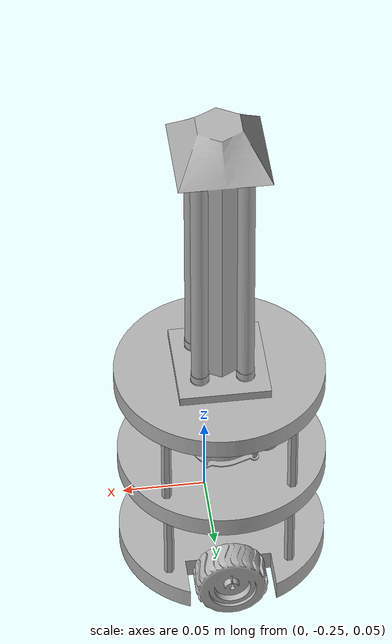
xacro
<?xml version="1.0" ?>
<robot name="robot_main" xmlns:xacro="http://www.ros.org/wiki/xacro">

<xacro:include filename="$(find robot_main_description)/urdf/materials.xacro" />
<xacro:include filename="$(find robot_main_description)/urdf/robot_main.trans" />
<xacro:include filename="$(find robot_main_description)/urdf/robot_main.gazebo" />
<link name="base_link">
  <inertial>
    <origin rpy="0 0 0" xyz="3.116104011509105e-17 -0.16999999999999996 0.09500000000057866"/>
    <mass value="0.8011413661172242"/>
    <inertia ixx="0.000435" ixy="-0.0" ixz="0.0" iyy="0.000916" iyz="0.0" izz="0.001331"/>
  </inertial>
  <visual>
    <origin rpy="0 0 0" xyz="0 0 0"/>
    <geometry>
      <mesh filename="package://robot_main_description/meshes/base_link.stl" scale="0.001 0.001 0.001"/>
    </geometry>
    <material name="silver"/>
  </visual>
  <collision>
    <origin rpy="0 0 0" xyz="0 0 0"/>
    <geometry>
      <mesh filename="package://robot_main_description/meshes/base_link.stl" scale="0.001 0.001 0.001"/>
    </geometry>
  </collision>
</link>

<link name="b_pill_3_1">
  <inertial>
    <origin rpy="0 0 0" xyz="0.009999999999999988 0.006000219713410665 -0.04999999999999999"/>
    <mass value="0.0084978742746349"/>
    <inertia ixx="2e-06" ixy="-0.0" ixz="0.0" iyy="2e-06" iyz="0.0" izz="0.0"/>
  </inertial>
  <visual>
    <origin rpy="0 0 0" xyz="-0.025 0.212272 -0.176"/>
    <geometry>
      <mesh filename="package://robot_main_description/meshes/b_pill_3_1.stl" scale="0.001 0.001 0.001"/>
    </geometry>
    <material name="silver"/>
  </visual>
  <collision>
    <origin rpy="0 0 0" xyz="-0.025 0.212272 -0.176"/>
    <geometry>
      <mesh filename="package://robot_main_description/meshes/b_pill_3_1.stl" scale="0.001 0.001 0.001"/>
    </geometry>
  </collision>
</link>

<link name="b_pill_1_1">
  <inertial>
    <origin rpy="0 0 0" xyz="0.010000000000000009 -0.007000219713410666 -0.04999999999999999"/>
    <mass value="0.008497874274634809"/>
    <inertia ixx="2e-06" ixy="0.0" ixz="0.0" iyy="2e-06" iyz="0.0" izz="0.0"/>
  </inertial>
  <visual>
    <origin rpy="0 0 0" xyz="-0.025 0.127728 -0.176"/>
    <geometry>
      <mesh filename="package://robot_main_description/meshes/b_pill_1_1.stl" scale="0.001 0.001 0.001"/>
    </geometry>
    <material name="silver"/>
  </visual>
  <collision>
    <origin rpy="0 0 0" xyz="-0.025 0.127728 -0.176"/>
    <geometry>
      <mesh filename="package://robot_main_description/meshes/b_pill_1_1.stl" scale="0.001 0.001 0.001"/>
    </geometry>
  </collision>
</link>

<link name="b_pill_2_1">
  <inertial>
    <origin rpy="0 0 0" xyz="-0.00999999999999996 -0.020000439426821393 -0.04999999999999999"/>
    <mass value="0.008497874274634876"/>
    <inertia ixx="2e-06" ixy="-0.0" ixz="-0.0" iyy="2e-06" iyz="0.0" izz="0.0"/>
  </inertial>
  <visual>
    <origin rpy="0 0 0" xyz="0.025 0.115456 -0.176"/>
    <geometry>
      <mesh filename="package://robot_main_description/meshes/b_pill_2_1.stl" scale="0.001 0.001 0.001"/>
    </geometry>
    <material name="silver"/>
  </visual>
  <collision>
    <origin rpy="0 0 0" xyz="0.025 0.115456 -0.176"/>
    <geometry>
      <mesh filename="package://robot_main_description/meshes/b_pill_2_1.stl" scale="0.001 0.001 0.001"/>
    </geometry>
  </collision>
</link>

<link name="b_pill_4_1">
  <inertial>
    <origin rpy="0 0 0" xyz="-0.009999999999999995 0.017000439426821418 -0.04999999999999999"/>
    <mass value="0.0084978742746348"/>
    <inertia ixx="2e-06" ixy="-0.0" ixz="0.0" iyy="2e-06" iyz="0.0" izz="0.0"/>
  </inertial>
  <visual>
    <origin rpy="0 0 0" xyz="0.025 0.224544 -0.176"/>
    <geometry>
      <mesh filename="package://robot_main_description/meshes/b_pill_4_1.stl" scale="0.001 0.001 0.001"/>
    </geometry>
    <material name="silver"/>
  </visual>
  <collision>
    <origin rpy="0 0 0" xyz="0.025 0.224544 -0.176"/>
    <geometry>
      <mesh filename="package://robot_main_description/meshes/b_pill_4_1.stl" scale="0.001 0.001 0.001"/>
    </geometry>
  </collision>
</link>

<link name="wheel1_1">
  <inertial>
    <origin rpy="0 0 0" xyz="1.3424174230260025e-09 0.0036337394694928304 -0.07500614159915955"/>
    <mass value="0.135584559283875"/>
    <inertia ixx="2.1e-05" ixy="0.0" ixz="0.0" iyy="3.5e-05" iyz="-0.0" izz="2.1e-05"/>
  </inertial>
  <visual>
    <origin rpy="0 0 0" xyz="-0.0 0.215 -0.17"/>
    <geometry>
      <mesh filename="package://robot_main_description/meshes/wheel1_1.stl" scale="0.001 0.001 0.001"/>
    </geometry>
    <material name="silver"/>
  </visual>
  <collision>
    <origin rpy="0 0 0" xyz="-0.0 0.215 -0.17"/>
    <geometry>
      <mesh filename="package://robot_main_description/meshes/wheel1_1.stl" scale="0.001 0.001 0.001"/>
    </geometry>
  </collision>
</link>

<link name="wheel2_1">
  <inertial>
    <origin rpy="0 0 0" xyz="-4.338940486903198e-09 -0.0036337590904149675 -0.07500614050851431"/>
    <mass value="0.13558455928387872"/>
    <inertia ixx="2.1e-05" ixy="0.0" ixz="-0.0" iyy="3.5e-05" iyz="0.0" izz="2.1e-05"/>
  </inertial>
  <visual>
    <origin rpy="0 0 0" xyz="-0.0 0.125 -0.17"/>
    <geometry>
      <mesh filename="package://robot_main_description/meshes/wheel2_1.stl" scale="0.001 0.001 0.001"/>
    </geometry>
    <material name="silver"/>
  </visual>
  <collision>
    <origin rpy="0 0 0" xyz="-0.0 0.125 -0.17"/>
    <geometry>
      <mesh filename="package://robot_main_description/meshes/wheel2_1.stl" scale="0.001 0.001 0.001"/>
    </geometry>
  </collision>
</link>

<link name="disc_middle_1">
  <inertial>
    <origin rpy="0 0 0" xyz="0.035000000000000024 0.03954343942682145 -0.06899999999999995"/>
    <mass value="1.0653769006853706"/>
    <inertia ixx="0.000972" ixy="-0.0" ixz="0.0" iyy="0.000972" iyz="0.0" izz="0.001918"/>
  </inertial>
  <visual>
    <origin rpy="0 0 0" xyz="0.035 0.210087 -0.226"/>
    <geometry>
      <mesh filename="package://robot_main_description/meshes/disc_middle_1.stl" scale="0.001 0.001 0.001"/>
    </geometry>
    <material name="silver"/>
  </visual>
  <collision>
    <origin rpy="0 0 0" xyz="0.035 0.210087 -0.226"/>
    <geometry>
      <mesh filename="package://robot_main_description/meshes/disc_middle_1.stl" scale="0.001 0.001 0.001"/>
    </geometry>
  </collision>
</link>

<link name="LIDAR_1">
  <inertial>
    <origin rpy="0 0 0" xyz="-0.004147049785164399 4.394268210416996e-07 0.01010057111139584"/>
    <mass value="0.14394520677893105"/>
    <inertia ixx="1.5e-05" ixy="0.0" ixz="-5e-06" iyy="2.7e-05" iyz="0.0" izz="3.1e-05"/>
  </inertial>
  <visual>
    <origin rpy="0 0 0" xyz="-0.0 0.170544 -0.163"/>
    <geometry>
      <mesh filename="package://robot_main_description/meshes/LIDAR_1.stl" scale="0.001 0.001 0.001"/>
    </geometry>
    <material name="silver"/>
  </visual>
  <collision>
    <origin rpy="0 0 0" xyz="-0.0 0.170544 -0.163"/>
    <geometry>
      <mesh filename="package://robot_main_description/meshes/LIDAR_1.stl" scale="0.001 0.001 0.001"/>
    </geometry>
  </collision>
</link>

<link name="top_struct_1">
  <inertial>
    <origin rpy="0 0 0" xyz="0.00018784276623250314 -6.70226255009565e-05 0.10535186097087959"/>
    <mass value="0.5827013739765129"/>
    <inertia ixx="0.00274" ixy="0.0" ixz="-1e-06" iyy="0.00273" iyz="0.0" izz="0.000164"/>
  </inertial>
  <visual>
    <origin rpy="0 0 0" xyz="-0.001 0.171544 -0.225"/>
    <geometry>
      <mesh filename="package://robot_main_description/meshes/top_struct_1.stl" scale="0.001 0.001 0.001"/>
    </geometry>
    <material name="silver"/>
  </visual>
  <collision>
    <origin rpy="0 0 0" xyz="-0.001 0.171544 -0.225"/>
    <geometry>
      <mesh filename="package://robot_main_description/meshes/top_struct_1.stl" scale="0.001 0.001 0.001"/>
    </geometry>
  </collision>
</link>

<link name="lamp1_1">
  <inertial>
    <origin rpy="0 0 0" xyz="-1.0062974498820099e-08 -4.2765458235782816e-07 0.07874999999999571"/>
    <mass value="0.09355129470031455"/>
    <inertia ixx="0.000198" ixy="-0.0" ixz="-0.0" iyy="0.000198" iyz="0.0" izz="1e-06"/>
  </inertial>
  <visual>
    <origin rpy="0 0 0" xyz="-0.013958 0.185664 -0.23025"/>
    <geometry>
      <mesh filename="package://robot_main_description/meshes/lamp1_1.stl" scale="0.001 0.001 0.001"/>
    </geometry>
    <material name="silver"/>
  </visual>
  <collision>
    <origin rpy="0 0 0" xyz="-0.013958 0.185664 -0.23025"/>
    <geometry>
      <mesh filename="package://robot_main_description/meshes/lamp1_1.stl" scale="0.001 0.001 0.001"/>
    </geometry>
  </collision>
</link>

<link name="lamp2_1">
  <inertial>
    <origin rpy="0 0 0" xyz="-1.0062978336028428e-08 3.0650822915867515e-07 0.07874999999999915"/>
    <mass value="0.09355129470031434"/>
    <inertia ixx="0.000198" ixy="-0.0" ixz="-0.0" iyy="0.000198" iyz="-0.0" izz="1e-06"/>
  </inertial>
  <visual>
    <origin rpy="0 0 0" xyz="-0.013958 0.157423 -0.23025"/>
    <geometry>
      <mesh filename="package://robot_main_description/meshes/lamp2_1.stl" scale="0.001 0.001 0.001"/>
    </geometry>
    <material name="silver"/>
  </visual>
  <collision>
    <origin rpy="0 0 0" xyz="-0.013958 0.157423 -0.23025"/>
    <geometry>
      <mesh filename="package://robot_main_description/meshes/lamp2_1.stl" scale="0.001 0.001 0.001"/>
    </geometry>
  </collision>
</link>

<link name="lamp4_1">
  <inertial>
    <origin rpy="0 0 0" xyz="1.0063024212525473e-08 3.0650824270339605e-07 0.07874999999999943"/>
    <mass value="0.09355129470031395"/>
    <inertia ixx="0.000198" ixy="-0.0" ixz="-0.0" iyy="0.000198" iyz="-0.0" izz="1e-06"/>
  </inertial>
  <visual>
    <origin rpy="0 0 0" xyz="0.011958 0.157423 -0.23025"/>
    <geometry>
      <mesh filename="package://robot_main_description/meshes/lamp4_1.stl" scale="0.001 0.001 0.001"/>
    </geometry>
    <material name="silver"/>
  </visual>
  <collision>
    <origin rpy="0 0 0" xyz="0.011958 0.157423 -0.23025"/>
    <geometry>
      <mesh filename="package://robot_main_description/meshes/lamp4_1.stl" scale="0.001 0.001 0.001"/>
    </geometry>
  </collision>
</link>

<link name="lamp3_1">
  <inertial>
    <origin rpy="0 0 0" xyz="1.0062992449738628e-08 -4.2765462221483475e-07 0.0787499999999976"/>
    <mass value="0.09355129470031469"/>
    <inertia ixx="0.000198" ixy="-0.0" ixz="-0.0" iyy="0.000198" iyz="0.0" izz="1e-06"/>
  </inertial>
  <visual>
    <origin rpy="0 0 0" xyz="0.011958 0.185664 -0.23025"/>
    <geometry>
      <mesh filename="package://robot_main_description/meshes/lamp3_1.stl" scale="0.001 0.001 0.001"/>
    </geometry>
    <material name="silver"/>
  </visual>
  <collision>
    <origin rpy="0 0 0" xyz="0.011958 0.185664 -0.23025"/>
    <geometry>
      <mesh filename="package://robot_main_description/meshes/lamp3_1.stl" scale="0.001 0.001 0.001"/>
    </geometry>
  </collision>
</link>

<link name="t_pill_3_1">
  <inertial>
    <origin rpy="0 0 0" xyz="0.02999999999999994 0.23854343942682155 0.15"/>
    <mass value="0.008497874274634797"/>
    <inertia ixx="2e-06" ixy="0.0" ixz="-0.0" iyy="2e-06" iyz="-0.0" izz="0.0"/>
  </inertial>
  <visual>
    <origin rpy="0 0 0" xyz="-0.005 0.446087 -0.038"/>
    <geometry>
      <mesh filename="package://robot_main_description/meshes/t_pill_3_1.stl" scale="0.001 0.001 0.001"/>
    </geometry>
    <material name="silver"/>
  </visual>
  <collision>
    <origin rpy="0 0 0" xyz="-0.005 0.446087 -0.038"/>
    <geometry>
      <mesh filename="package://robot_main_description/meshes/t_pill_3_1.stl" scale="0.001 0.001 0.001"/>
    </geometry>
  </collision>
</link>

<link name="t_pill_4_1">
  <inertial>
    <origin rpy="0 0 0" xyz="-0.03999999999999986 0.2385434394268215 0.15"/>
    <mass value="0.008497874274634847"/>
    <inertia ixx="2e-06" ixy="0.0" ixz="-0.0" iyy="2e-06" iyz="-0.0" izz="0.0"/>
  </inertial>
  <visual>
    <origin rpy="0 0 0" xyz="-0.005 0.446087 -0.038"/>
    <geometry>
      <mesh filename="package://robot_main_description/meshes/t_pill_4_1.stl" scale="0.001 0.001 0.001"/>
    </geometry>
    <material name="silver"/>
  </visual>
  <collision>
    <origin rpy="0 0 0" xyz="-0.005 0.446087 -0.038"/>
    <geometry>
      <mesh filename="package://robot_main_description/meshes/t_pill_4_1.stl" scale="0.001 0.001 0.001"/>
    </geometry>
  </collision>
</link>

<link name="t_pill_1_1">
  <inertial>
    <origin rpy="0 0 0" xyz="0.030999999999999906 0.3115434394268215 0.15"/>
    <mass value="0.008497874274634847"/>
    <inertia ixx="2e-06" ixy="0.0" ixz="0.0" iyy="2e-06" iyz="-0.0" izz="0.0"/>
  </inertial>
  <visual>
    <origin rpy="0 0 0" xyz="-0.005 0.446087 -0.038"/>
    <geometry>
      <mesh filename="package://robot_main_description/meshes/t_pill_1_1.stl" scale="0.001 0.001 0.001"/>
    </geometry>
    <material name="silver"/>
  </visual>
  <collision>
    <origin rpy="0 0 0" xyz="-0.005 0.446087 -0.038"/>
    <geometry>
      <mesh filename="package://robot_main_description/meshes/t_pill_1_1.stl" scale="0.001 0.001 0.001"/>
    </geometry>
  </collision>
</link>

<link name="t_pill_2_1">
  <inertial>
    <origin rpy="0 0 0" xyz="-0.040999999999999925 0.3115434394268215 0.15"/>
    <mass value="0.008497874274634798"/>
    <inertia ixx="2e-06" ixy="-0.0" ixz="-0.0" iyy="2e-06" iyz="-0.0" izz="0.0"/>
  </inertial>
  <visual>
    <origin rpy="0 0 0" xyz="-0.005 0.446087 -0.038"/>
    <geometry>
      <mesh filename="package://robot_main_description/meshes/t_pill_2_1.stl" scale="0.001 0.001 0.001"/>
    </geometry>
    <material name="silver"/>
  </visual>
  <collision>
    <origin rpy="0 0 0" xyz="-0.005 0.446087 -0.038"/>
    <geometry>
      <mesh filename="package://robot_main_description/meshes/t_pill_2_1.stl" scale="0.001 0.001 0.001"/>
    </geometry>
  </collision>
</link>

<link name="disk_top__1">
  <inertial>
    <origin rpy="0 0 0" xyz="0.031015000000000098 0.010425439426821503 0.050999999999999934"/>
    <mass value="1.0653769006853737"/>
    <inertia ixx="0.000972" ixy="-0.0" ixz="-0.0" iyy="0.000972" iyz="-0.0" izz="0.001918"/>
  </inertial>
  <visual>
    <origin rpy="0 0 0" xyz="0.030015 0.181969 -0.168"/>
    <geometry>
      <mesh filename="package://robot_main_description/meshes/disk_top__1.stl" scale="0.001 0.001 0.001"/>
    </geometry>
    <material name="silver"/>
  </visual>
  <collision>
    <origin rpy="0 0 0" xyz="0.030015 0.181969 -0.168"/>
    <geometry>
      <mesh filename="package://robot_main_description/meshes/disk_top__1.stl" scale="0.001 0.001 0.001"/>
    </geometry>
  </collision>
</link>

<link name="Component16_1">
  <inertial>
    <origin rpy="0 0 0" xyz="-0.046000000000000034 5.551115123125783e-17 -0.0808858695652174"/>
    <mass value="0.01595290932015856"/>
    <inertia ixx="0.0" ixy="0.0" ixz="-0.0" iyy="0.0" iyz="0.0" izz="0.0"/>
  </inertial>
  <visual>
    <origin rpy="0 0 0" xyz="-0.0 0.17 -0.164"/>
    <geometry>
      <mesh filename="package://robot_main_description/meshes/Component16_1.stl" scale="0.001 0.001 0.001"/>
    </geometry>
    <material name="silver"/>
  </visual>
  <collision>
    <origin rpy="0 0 0" xyz="-0.0 0.17 -0.164"/>
    <geometry>
      <mesh filename="package://robot_main_description/meshes/Component16_1.stl" scale="0.001 0.001 0.001"/>
    </geometry>
  </collision>
</link>

<link name="Component6_1">
  <inertial>
    <origin rpy="0 0 0" xyz="0.04600000000000007 5.551115123125783e-17 -0.0808858695652174"/>
    <mass value="0.01595290932015856"/>
    <inertia ixx="0.0" ixy="0.0" ixz="-0.0" iyy="0.0" iyz="0.0" izz="0.0"/>
  </inertial>
  <visual>
    <origin rpy="0 0 0" xyz="-0.0 0.17 -0.164"/>
    <geometry>
      <mesh filename="package://robot_main_description/meshes/Component6_1.stl" scale="0.001 0.001 0.001"/>
    </geometry>
    <material name="silver"/>
  </visual>
  <collision>
    <origin rpy="0 0 0" xyz="-0.0 0.17 -0.164"/>
    <geometry>
      <mesh filename="package://robot_main_description/meshes/Component6_1.stl" scale="0.001 0.001 0.001"/>
    </geometry>
  </collision>
</link>

<joint name="Rigid1" type="fixed">
  <origin rpy="0 0 0" xyz="0.025 -0.212272 0.176"/>
  <parent link="base_link"/>
  <child link="b_pill_3_1"/>
</joint>

<joint name="Rigid2" type="fixed">
  <origin rpy="0 0 0" xyz="0.025 -0.127728 0.176"/>
  <parent link="base_link"/>
  <child link="b_pill_1_1"/>
</joint>

<joint name="Rigid3" type="fixed">
  <origin rpy="0 0 0" xyz="-0.025 -0.115456 0.176"/>
  <parent link="base_link"/>
  <child link="b_pill_2_1"/>
</joint>

<joint name="Rigid4" type="fixed">
  <origin rpy="0 0 0" xyz="-0.025 -0.224544 0.176"/>
  <parent link="base_link"/>
  <child link="b_pill_4_1"/>
</joint>

<joint name="Rev5" type="continuous">
  <origin rpy="0 0 0" xyz="0.0 -0.215 0.17"/>
  <parent link="base_link"/>
  <child link="wheel1_1"/>
  <axis xyz="-0.0 -1.0 -0.0"/>
</joint>

<joint name="Rev6" type="continuous">
  <origin rpy="0 0 0" xyz="0.0 -0.125 0.17"/>
  <parent link="base_link"/>
  <child link="wheel2_1"/>
  <axis xyz="0.0 1.0 0.0"/>
</joint>

<joint name="Rigid7" type="fixed">
  <origin rpy="0 0 0" xyz="-0.01 0.014457 0.05"/>
  <parent link="b_pill_4_1"/>
  <child link="disc_middle_1"/>
</joint>

<joint name="Rigid8" type="fixed">
  <origin rpy="0 0 0" xyz="0.035 0.039543 -0.063"/>
  <parent link="disc_middle_1"/>
  <child link="LIDAR_1"/>
</joint>

<joint name="Rigid9" type="fixed">
  <origin rpy="0 0 0" xyz="0.031015 0.010425 0.057"/>
  <parent link="disk_top__1"/>
  <child link="top_struct_1"/>
</joint>

<joint name="Rigid10" type="fixed">
  <origin rpy="0 0 0" xyz="0.012958 -0.01412 0.00525"/>
  <parent link="top_struct_1"/>
  <child link="lamp1_1"/>
</joint>

<joint name="Rigid11" type="fixed">
  <origin rpy="0 0 0" xyz="0.012958 0.014121 0.00525"/>
  <parent link="top_struct_1"/>
  <child link="lamp2_1"/>
</joint>

<joint name="Rigid12" type="fixed">
  <origin rpy="0 0 0" xyz="-0.012958 0.014121 0.00525"/>
  <parent link="top_struct_1"/>
  <child link="lamp4_1"/>
</joint>

<joint name="Rigid13" type="fixed">
  <origin rpy="0 0 0" xyz="-0.012958 -0.01412 0.00525"/>
  <parent link="top_struct_1"/>
  <child link="lamp3_1"/>
</joint>

<joint name="Rigid14" type="fixed">
  <origin rpy="0 0 0" xyz="0.04 -0.236 -0.188"/>
  <parent link="disc_middle_1"/>
  <child link="t_pill_3_1"/>
</joint>

<joint name="Rigid15" type="fixed">
  <origin rpy="0 0 0" xyz="0.04 -0.236 -0.188"/>
  <parent link="disc_middle_1"/>
  <child link="t_pill_4_1"/>
</joint>

<joint name="Rigid16" type="fixed">
  <origin rpy="0 0 0" xyz="0.04 -0.236 -0.188"/>
  <parent link="disc_middle_1"/>
  <child link="t_pill_1_1"/>
</joint>

<joint name="Rigid17" type="fixed">
  <origin rpy="0 0 0" xyz="0.04 -0.236 -0.188"/>
  <parent link="disc_middle_1"/>
  <child link="t_pill_2_1"/>
</joint>

<joint name="Rigid18" type="fixed">
  <origin rpy="0 0 0" xyz="-0.035015 0.264118 0.13"/>
  <parent link="t_pill_4_1"/>
  <child link="disk_top__1"/>
</joint>

<joint name="Rigid19" type="fixed">
  <origin rpy="0 0 0" xyz="0.0 -0.17 0.164"/>
  <parent link="base_link"/>
  <child link="Component16_1"/>
</joint>

<joint name="Rigid20" type="fixed">
  <origin rpy="0 0 0" xyz="0.0 -0.17 0.164"/>
  <parent link="base_link"/>
  <child link="Component6_1"/>
</joint>

</robot>

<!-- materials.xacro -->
<robot name="robot_main" xmlns:xacro="http://www.ros.org/wiki/xacro" >

<material name="silver">
  <color rgba="0.700 0.700 0.700 1.000"/>
</material>

</robot>

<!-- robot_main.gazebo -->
<robot name="robot_main" xmlns:xacro="http://www.ros.org/wiki/xacro" >

<xacro:property name="body_color" value="Gazebo/Silver" />

<gazebo>
  <plugin filename="libgazebo_ros_control.so" name="control"/>
</gazebo>
<gazebo reference="base_link">
  <material>${body_color}</material>
  <mu1>0.2</mu1>
  <mu2>0.2</mu2>
  <selfCollide>true</selfCollide>
  <gravity>true</gravity>
</gazebo>

<gazebo reference="b_pill_3_1">
  <material>${body_color}</material>
  <mu1>0.2</mu1>
  <mu2>0.2</mu2>
  <selfCollide>true</selfCollide>
</gazebo>

<gazebo reference="b_pill_1_1">
  <material>${body_color}</material>
  <mu1>0.2</mu1>
  <mu2>0.2</mu2>
  <selfCollide>true</selfCollide>
</gazebo>

<gazebo reference="b_pill_2_1">
  <material>${body_color}</material>
  <mu1>0.2</mu1>
  <mu2>0.2</mu2>
  <selfCollide>true</selfCollide>
</gazebo>

<gazebo reference="b_pill_4_1">
  <material>${body_color}</material>
  <mu1>0.2</mu1>
  <mu2>0.2</mu2>
  <selfCollide>true</selfCollide>
</gazebo>

<gazebo reference="wheel1_1">
  <material>${body_color}</material>
  <mu1>0.2</mu1>
  <mu2>0.2</mu2>
  <selfCollide>true</selfCollide>
</gazebo>

<gazebo reference="wheel2_1">
  <material>${body_color}</material>
  <mu1>0.2</mu1>
  <mu2>0.2</mu2>
  <selfCollide>true</selfCollide>
</gazebo>

<gazebo reference="disc_middle_1">
  <material>${body_color}</material>
  <mu1>0.2</mu1>
  <mu2>0.2</mu2>
  <selfCollide>true</selfCollide>
</gazebo>

<gazebo reference="LIDAR_1">
  <material>${body_color}</material>
  <mu1>0.2</mu1>
  <mu2>0.2</mu2>
  <selfCollide>true</selfCollide>
</gazebo>

<gazebo reference="top_struct_1">
  <material>${body_color}</material>
  <mu1>0.2</mu1>
  <mu2>0.2</mu2>
  <selfCollide>true</selfCollide>
</gazebo>

<gazebo reference="lamp1_1">
  <material>${body_color}</material>
  <mu1>0.2</mu1>
  <mu2>0.2</mu2>
  <selfCollide>true</selfCollide>
</gazebo>

<gazebo reference="lamp2_1">
  <material>${body_color}</material>
  <mu1>0.2</mu1>
  <mu2>0.2</mu2>
  <selfCollide>true</selfCollide>
</gazebo>

<gazebo reference="lamp4_1">
  <material>${body_color}</material>
  <mu1>0.2</mu1>
  <mu2>0.2</mu2>
  <selfCollide>true</selfCollide>
</gazebo>

<gazebo reference="lamp3_1">
  <material>${body_color}</material>
  <mu1>0.2</mu1>
  <mu2>0.2</mu2>
  <selfCollide>true</selfCollide>
</gazebo>

<gazebo reference="t_pill_3_1">
  <material>${body_color}</material>
  <mu1>0.2</mu1>
  <mu2>0.2</mu2>
  <selfCollide>true</selfCollide>
</gazebo>

<gazebo reference="t_pill_4_1">
  <material>${body_color}</material>
  <mu1>0.2</mu1>
  <mu2>0.2</mu2>
  <selfCollide>true</selfCollide>
</gazebo>

<gazebo reference="t_pill_1_1">
  <material>${body_color}</material>
  <mu1>0.2</mu1>
  <mu2>0.2</mu2>
  <selfCollide>true</selfCollide>
</gazebo>

<gazebo reference="t_pill_2_1">
  <material>${body_color}</material>
  <mu1>0.2</mu1>
  <mu2>0.2</mu2>
  <selfCollide>true</selfCollide>
</gazebo>

<gazebo reference="disk_top__1">
  <material>${body_color}</material>
  <mu1>0.2</mu1>
  <mu2>0.2</mu2>
  <selfCollide>true</selfCollide>
</gazebo>

<gazebo reference="Component16_1">
  <material>${body_color}</material>
  <mu1>0.2</mu1>
  <mu2>0.2</mu2>
  <selfCollide>true</selfCollide>
</gazebo>

<gazebo reference="Component6_1">
  <material>${body_color}</material>
  <mu1>0.2</mu1>
  <mu2>0.2</mu2>
  <selfCollide>true</selfCollide>
</gazebo>

</robot>
